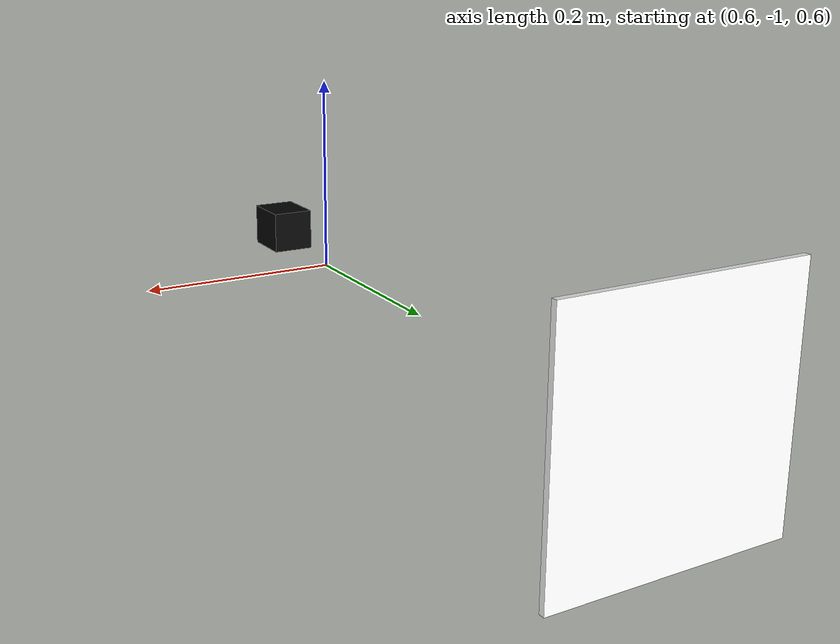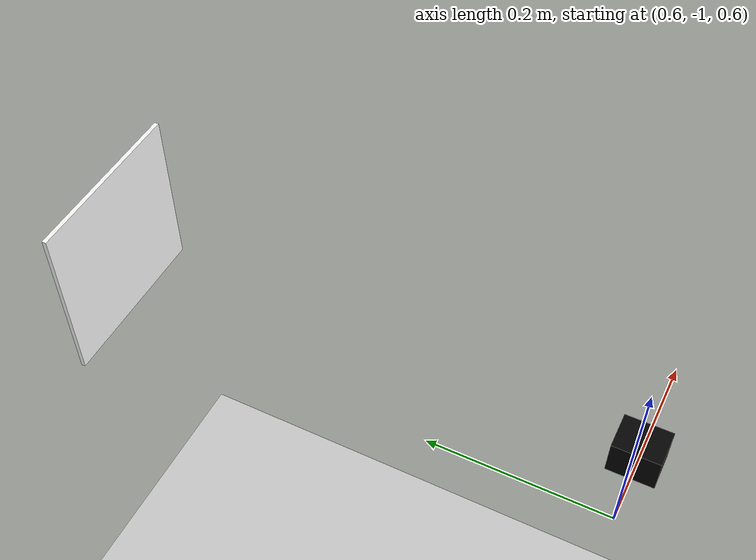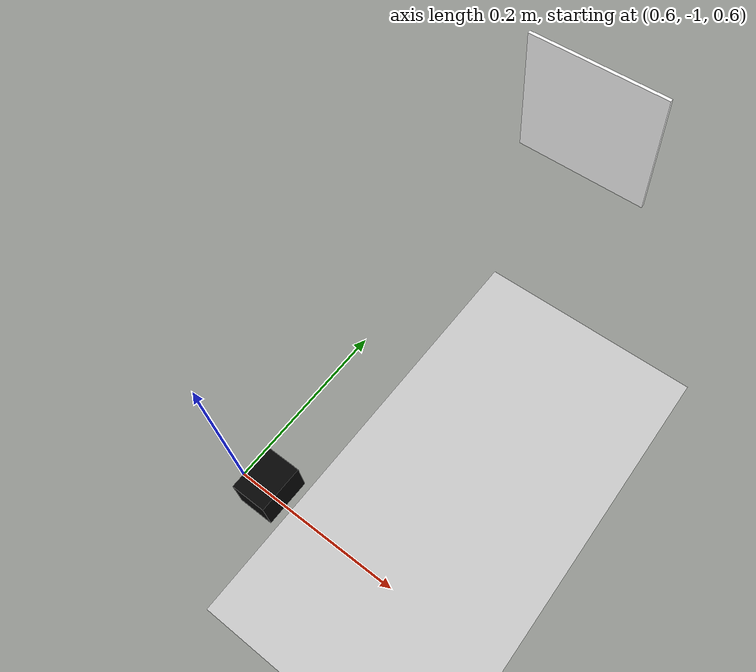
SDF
<?xml version="1.0"?>
<sdf version="1.7">
  <world name="iiwa_aruco_world">
    <physics name="1ms" type="ignored">
      <max_step_size>0.001</max_step_size>
      <real_time_factor>1.0</real_time_factor>
    </physics>

    <plugin filename="gz-sim-physics-system" name="gz::sim::systems::Physics"/>
    <plugin filename="gz-sim-user-commands-system" name="gz::sim::systems::UserCommands"/>
    <plugin filename="gz-sim-scene-broadcaster-system" name="gz::sim::systems::SceneBroadcaster"/>

    <plugin filename="gz-sim-sensors-system" name="gz::sim::systems::Sensors">
      <render_engine>ogre2</render_engine>
    </plugin>

    <light name="sun" type="directional">
      <pose>0 0 5 0 0 0</pose>
      <cast_shadows>true</cast_shadows>
      <intensity>1.0</intensity>
      <direction>-0.5 0.1 -0.9</direction>
    </light>

    <model name="ground_plane">
      <static>true</static>
      <link name="link">
        <collision name="collision">
          <geometry>
            <plane>
              <normal>0 0 1</normal>
              <size>5 5</size>
            </plane>
          </geometry>
        </collision>
        <visual name="visual">
          <geometry>
            <plane>
              <normal>0 0 1</normal>
              <size>5 5</size>
            </plane>
          </geometry>
          <material>
            <diffuse>0.8 0.8 0.8 1</diffuse>
          </material>
        </visual>
      </link>
    </model>

    <include>
      <uri>model://aruco_tag</uri>
      <name>aruco_tag</name>
      <pose>0.65 -0.40 0.65 0 0 0</pose>
    </include>

    <!-- Static camera used for ArUco detection in HW2 Part 2(a) -->
    <model name="aruco_observer_camera">
      <static>true</static>
      <pose>0.65 -1.00 0.65 0 0 1.5708</pose>

      <link name="camera_link">
        <visual name="camera_body">
          <geometry>
            <box>
              <size>0.05 0.04 0.04</size>
            </box>
          </geometry>
          <material>
            <diffuse>0.02 0.02 0.02 1</diffuse>
          </material>
        </visual>

        <sensor name="iiwa_camera" type="camera">
          <always_on>1</always_on>
          <update_rate>30</update_rate>
          <visualize>true</visualize>
          <topic>/iiwa_camera/image</topic>
          <camera>
            <horizontal_fov>1.3962634</horizontal_fov>
            <image>
              <width>640</width>
              <height>480</height>
              <format>R8G8B8</format>
            </image>
            <clip>
              <near>0.02</near>
              <far>10.0</far>
            </clip>
          </camera>
        </sensor>
      </link>
    </model>

  </world>
</sdf>

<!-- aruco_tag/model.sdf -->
<sdf version="1.7">
  <model name="aruco_tag">
    <static>true</static>
    <link name="aruco_tag_link">
      <visual name="aruco_tag_visual">
        <pose>0 0 0 0 0 0</pose>
        <geometry>
          <box>
            <size>0.20 0.005 0.20</size>
          </box>
        </geometry>
        <material>
          <diffuse>1 1 1 1</diffuse>
          <specular>0 0 0 1</specular>
          <pbr>
            <metal>
              <albedo_map>materials/textures/aruco_25.png</albedo_map>
            </metal>
          </pbr>
        </material>
      </visual>
    </link>
  </model>
</sdf>
